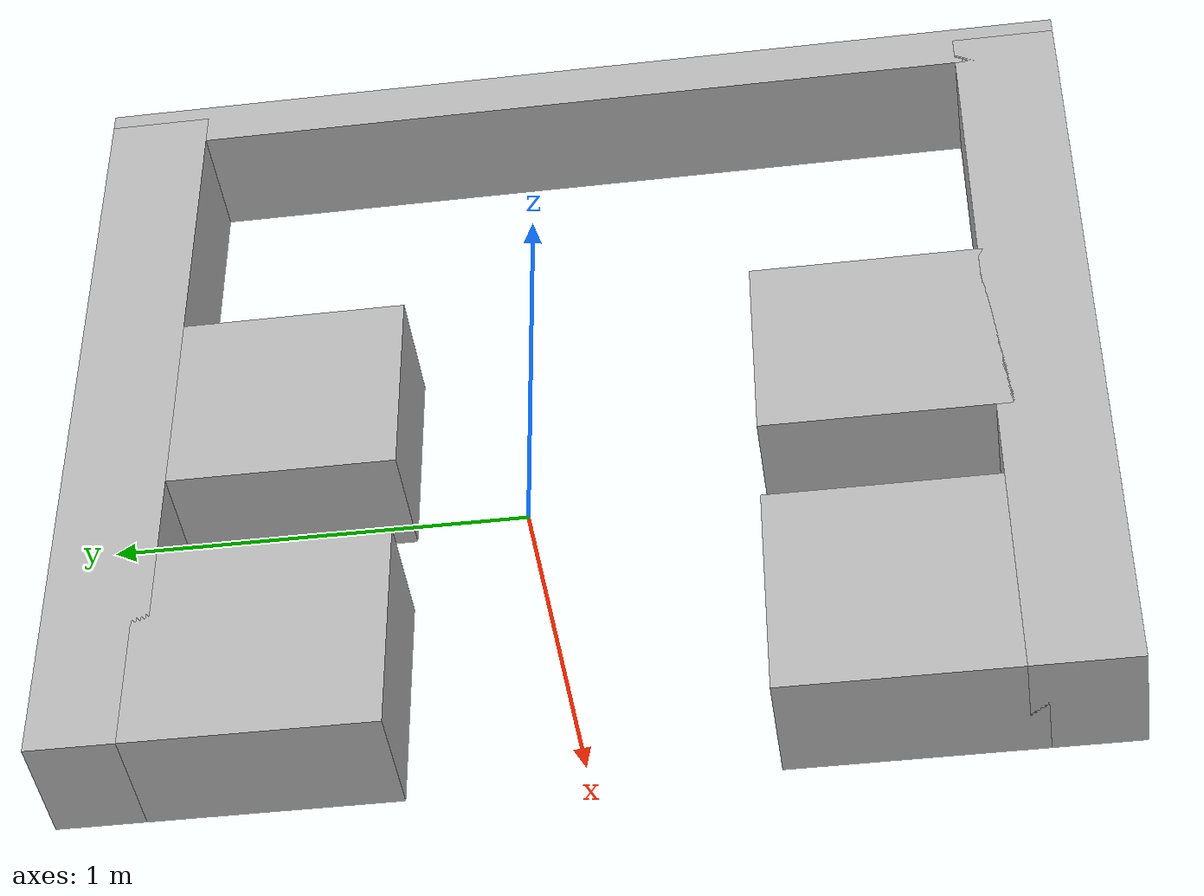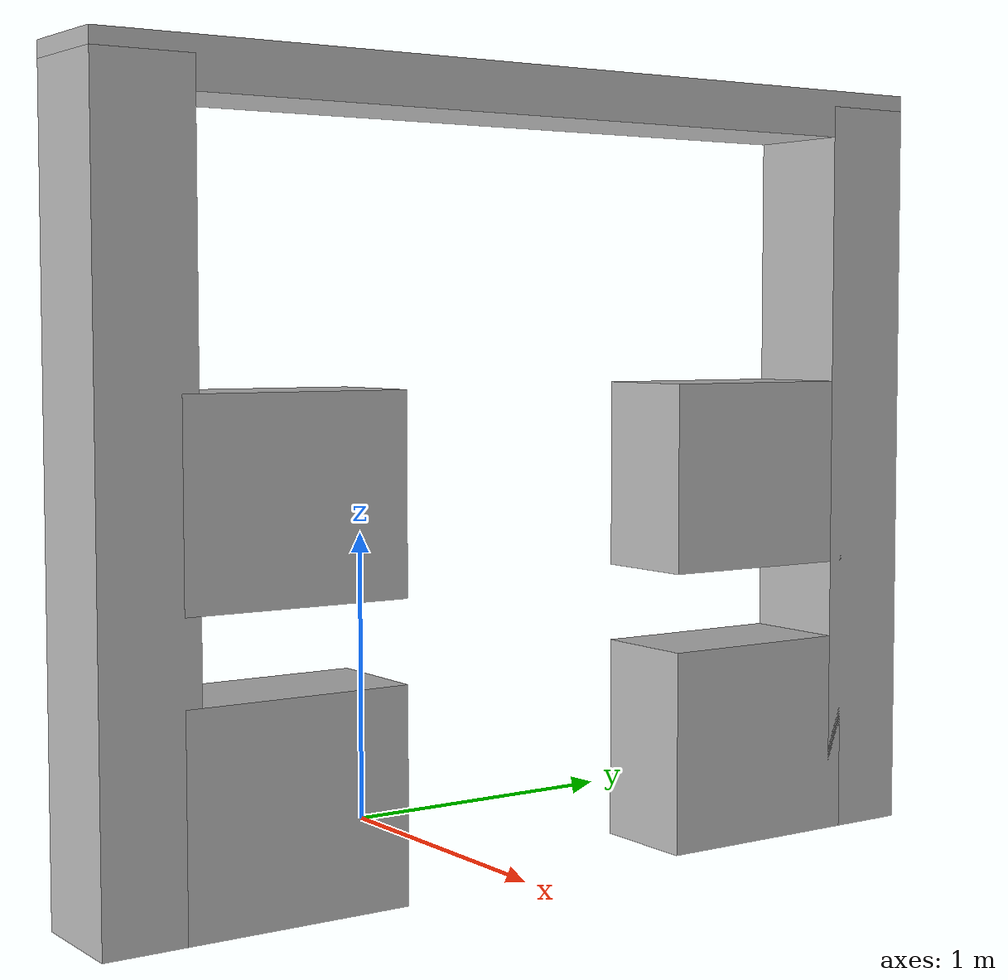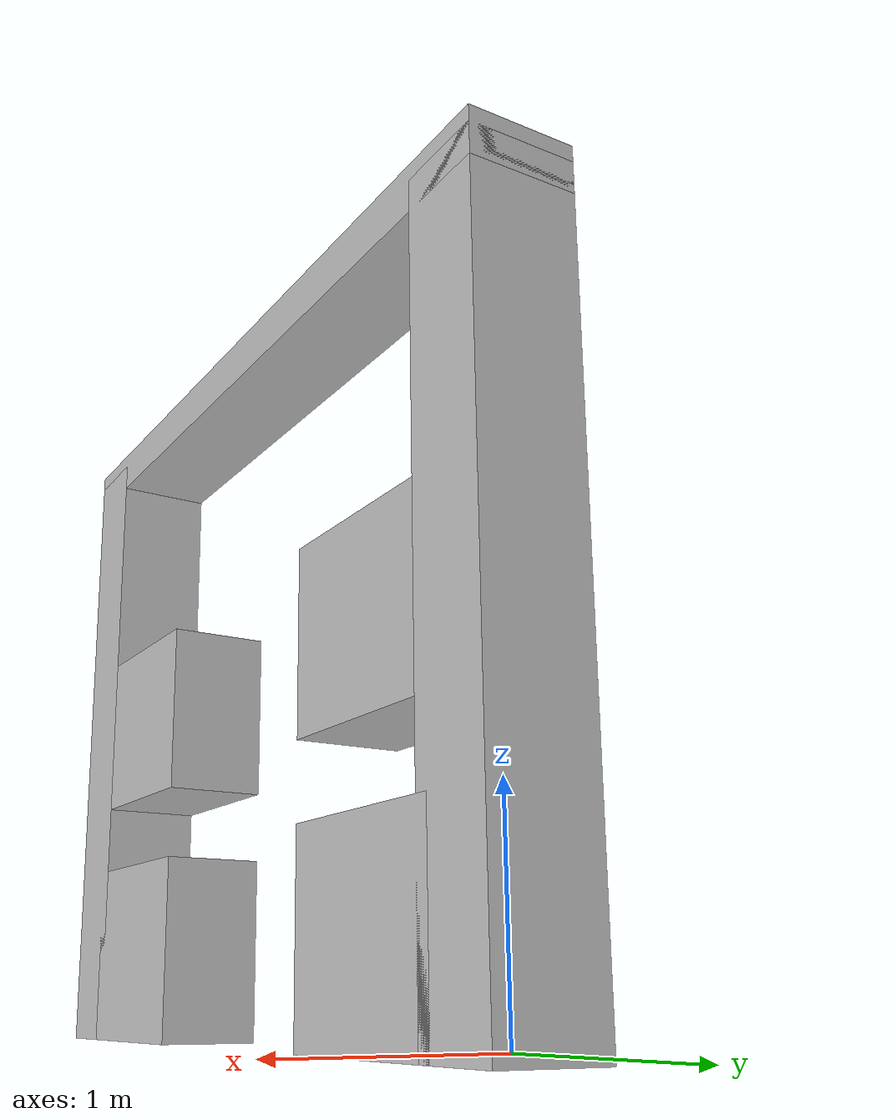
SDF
<sdf version="1.7"><model name="validation_t_gate"><static>true</static><link name="low_-1"><pose>0.95 -0.85 0.359226 0 0 0</pose><collision name="collision"><geometry><box><size>0.35 0.7 0.65</size></box></geometry></collision><visual name="visual"><geometry><box><size>0.35 0.7 0.65</size></box></geometry></visual></link><link name="pillar_-1"><pose>0.95 -1.3 1.234226 0 0 0</pose><collision name="collision"><geometry><box><size>0.35 0.3 2.4</size></box></geometry></collision><visual name="visual"><geometry><box><size>0.35 0.3 2.4</size></box></geometry></visual></link><link name="low_1"><pose>0.95 0.85 0.359226 0 0 0</pose><collision name="collision"><geometry><box><size>0.35 0.7 0.65</size></box></geometry></collision><visual name="visual"><geometry><box><size>0.35 0.7 0.65</size></box></geometry></visual></link><link name="pillar_1"><pose>0.95 1.3 1.234226 0 0 0</pose><collision name="collision"><geometry><box><size>0.35 0.3 2.4</size></box></geometry></collision><visual name="visual"><geometry><box><size>0.35 0.3 2.4</size></box></geometry></visual></link><link name="top"><pose>0.95 0.0 2.409226 0 0 0</pose><collision name="collision"><geometry><box><size>0.35 2.9 0.15</size></box></geometry></collision><visual name="visual"><geometry><box><size>0.35 2.9 0.15</size></box></geometry></visual></link><link name="arm_block_-1"><pose>0.95 -0.85 1.234226 0 0 0</pose><collision name="collision"><geometry><box><size>0.35 0.7 0.6</size></box></geometry></collision><visual name="visual"><geometry><box><size>0.35 0.7 0.6</size></box></geometry></visual></link><link name="arm_block_1"><pose>0.95 0.85 1.234226 0 0 0</pose><collision name="collision"><geometry><box><size>0.35 0.7 0.6</size></box></geometry></collision><visual name="visual"><geometry><box><size>0.35 0.7 0.6</size></box></geometry></visual></link></model></sdf>
